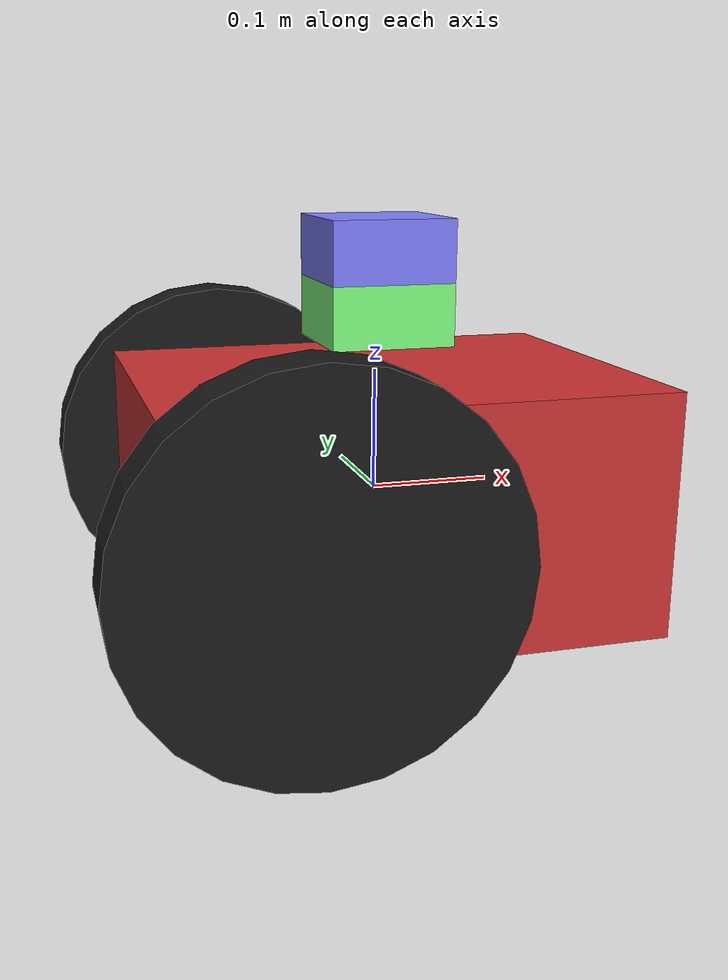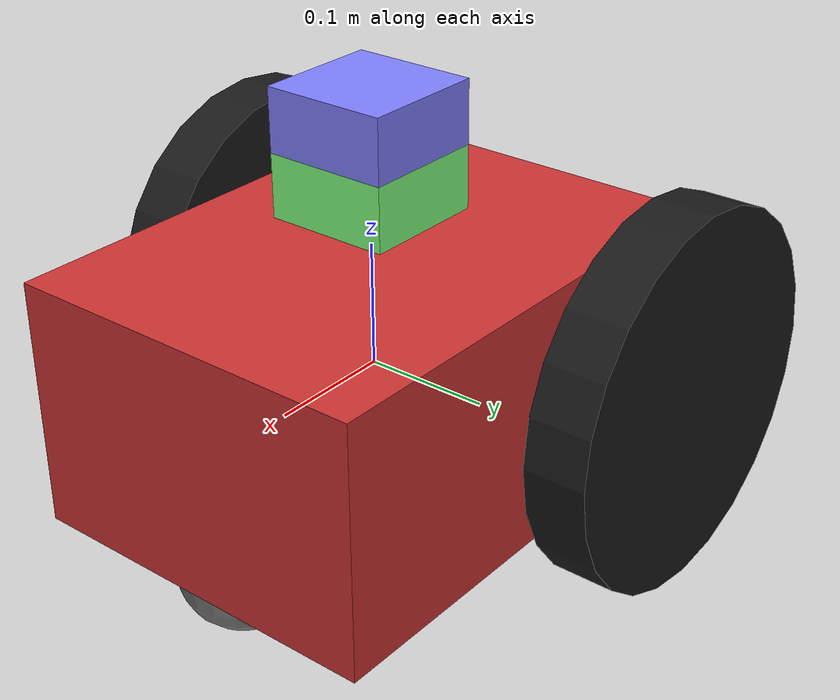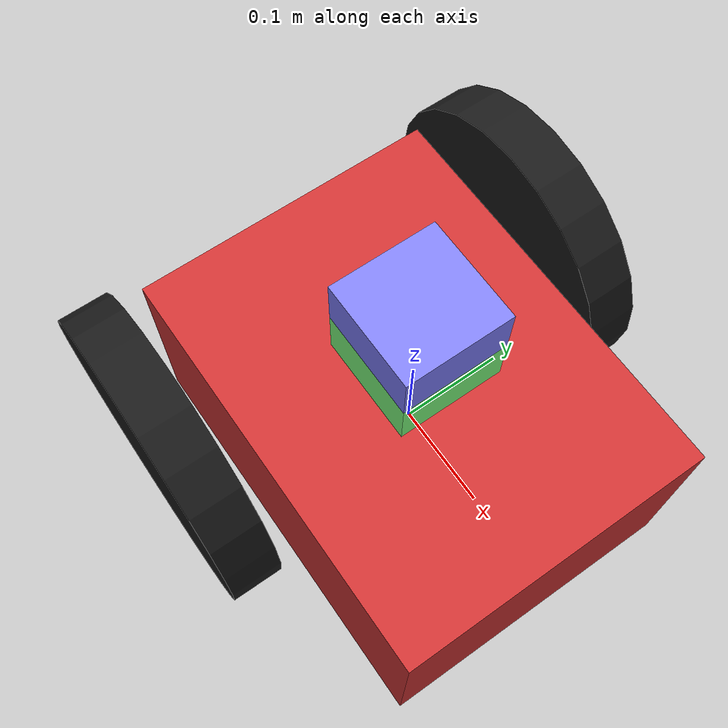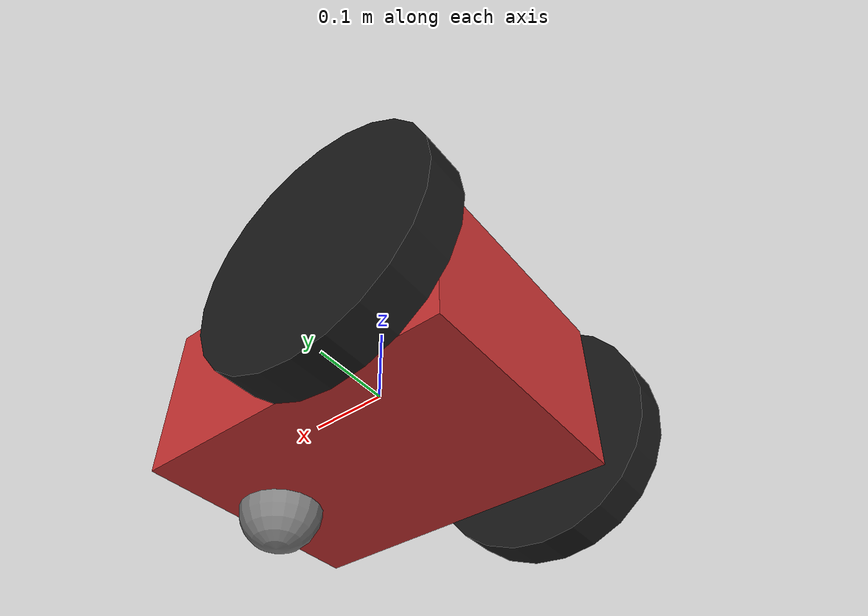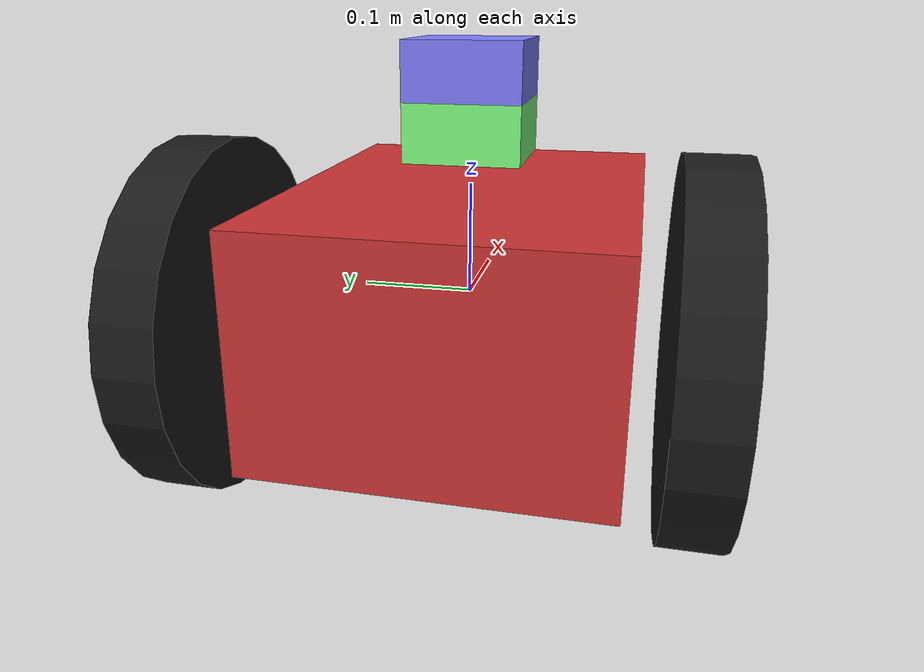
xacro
<?xml version="1.0"?>
<robot xmlns:xacro="http://www.ros.org/wiki/xacro" name="com01"
  xmlns:math="http://www.w3.org/2005/xpath-functions/math">
  <xacro:property name="M_PI" value="3.1415926535897931" />
  <!-- Parameters -->
  <xacro:property name="base_mass" value="5.0" />
  <xacro:property name="wheel_mass" value="0.5" />
  <xacro:property name="caster_mass" value="0.1" />

  <xacro:property name="base_size" value="0.4 0.3 0.2" />
  <xacro:property name="wheel_radius" value="0.15" />
  <xacro:property name="wheel_width" value="0.05" />
  <xacro:property name="caster_radius" value="0.05" />

  <xacro:property name="wheel_separation" value="0.4" />
  <xacro:property name="wheel_y_offset" value="0.2" />
  <xacro:property name="wheel_x_offset" value="-0.1" />
  <xacro:property name="caster_x_offset" value="0.15" />
  <xacro:property name="caster_z_offset" value="-0.1" />

  <!-- Base Link -->
  <link name="base_link">
    <inertial>
      <mass value="${base_mass}" />
      <inertia ixx="0.1" ixy="0.0" ixz="0.0" iyy="0.1" iyz="0.0" izz="0.1" />
    </inertial>

    <visual>
      <geometry>
        <box size="${base_size}" />
      </geometry>
      <material name="red">
        <color rgba="0.8 0.2 0.2 1" />
      </material>
    </visual>

    <collision>
      <geometry>
        <box size="${base_size}" />
      </geometry>
    </collision>
  </link>

  <!-- Left Wheel -->
  <xacro:macro name="wheel" params="prefix reflect">
    <link name="${prefix}_wheel">
      <inertial>
        <mass value="${wheel_mass}" />
        <inertia ixx="0.02" ixy="0.0" ixz="0.0" iyy="0.02" iyz="0.0" izz="0.02" />
      </inertial>

      <visual>
        <origin xyz="0 0 0" rpy="${M_PI/2} 0 0" />
        <geometry>
          <cylinder radius="${wheel_radius}" length="${wheel_width}" />
        </geometry>
        <material name="black">
          <color rgba="0.1 0.1 0.1 1" />
        </material>
      </visual>

      <collision>
        <origin xyz="0 0 0" rpy="${M_PI/2} 0 0" />
        <geometry>
          <cylinder radius="${wheel_radius}" length="${wheel_width}" />
        </geometry>
      </collision>
    </link>

    <joint name="${prefix}_wheel_joint" type="continuous">
      <parent link="base_link" />
      <child link="${prefix}_wheel" />
      <origin xyz="${wheel_x_offset} ${reflect * wheel_y_offset} 0" rpy="0 0 0" />
      <axis xyz="0 1 0" />
    </joint>

    <gazebo reference="${prefix}_wheel">
      <mu1 value="1.0" />
      <mu2 value="1.0" />
      <kp value="10000000.0" />
      <kd value="1.0" />
    </gazebo>
  </xacro:macro>

  <!-- Create left and right wheels -->
  <xacro:wheel prefix="left" reflect="1" />
  <xacro:wheel prefix="right" reflect="-1" />

  <!-- Caster Wheel -->
  <link name="caster_wheel">
    <inertial>
      <mass value="${caster_mass}" />
      <inertia ixx="0.001" ixy="0.0" ixz="0.0" iyy="0.001" iyz="0.0" izz="0.001" />
    </inertial>

    <visual>
      <geometry>
        <sphere radius="${caster_radius}" />
      </geometry>
      <material name="gray">
        <color rgba="0.5 0.5 0.5 1" />
      </material>
    </visual>

    <collision>
      <geometry>
        <sphere radius="${caster_radius}" />
      </geometry>
    </collision>
  </link>

  <joint name="caster_wheel_joint" type="fixed">
    <parent link="base_link" />
    <child link="caster_wheel" />
    <origin xyz="${caster_x_offset} 0 ${caster_z_offset}" rpy="0 0 0" />
  </joint>

  <!-- IMU Link -->
  <link name="imu_link">
    <inertial>
      <mass value="0.01" />
      <inertia ixx="0.001" ixy="0.0" ixz="0.0" iyy="0.001" iyz="0.0" izz="0.001" />
    </inertial>

    <visual>
      <geometry>
        <box size="0.1 0.1 0.05" />
      </geometry>
      <material name="blue">
        <color rgba="0.5 0.5 1 1" />
      </material>
    </visual>

    <collision>
      <geometry>
        <box size="0.1 0.1 0.05" />
      </geometry>
    </collision>
  </link>
  <joint name="imu_joint" type="fixed">
    <parent link="base_link" />
    <child link="imu_link" />
    <origin xyz="0 0 0.2" rpy="0 0 0" />
  </joint>
  <gazebo reference="imu_link">
    <sensor name="imu_sensor" type="imu">
      <always_on>1</always_on>
      <update_rate>10</update_rate>
      <visualize>true</visualize>
      <topic>imu</topic>
    </sensor>
  </gazebo>

  <!-- Lidar Link -->
  <link name="lidar_link">
    <inertial>
      <mass value="0.01" />
      <inertia ixx="0.001" ixy="0.0" ixz="0.0" iyy="0.001" iyz="0.0" izz="0.001" />
    </inertial>

    <visual>
      <geometry>
        <box size="0.1 0.1 0.05" />
      </geometry>
      <material name="green">
        <color rgba="0.5 1 0.5 1" />
      </material>
    </visual>

    <collision>
      <geometry>
        <box size="0.1 0.1 0.05" />
      </geometry>
    </collision>
  </link>
  <joint name="lidar_joint" type="fixed">
    <parent link="base_link" />
    <child link="lidar_link" />
    <origin xyz="0 0 0.15" rpy="0 0 0" />
  </joint>
  <gazebo reference="lidar_link">
    <sensor name='gpu_lidar' type='gpu_lidar'>
      <topic>scan</topic>
      <update_rate>20</update_rate>
      <gz_frame_id>lidar_link</gz_frame_id>
      <ray>
        <scan>
          <horizontal>
            <samples>640</samples>
            <resolution>1</resolution>
            <min_angle>-1.396263</min_angle>
            <max_angle>1.396263</max_angle>
          </horizontal>
          <vertical>
            <samples>1</samples>
            <resolution>0.01</resolution>
            <min_angle>0</min_angle>
            <max_angle>0</max_angle>
          </vertical>
        </scan>
        <range>
          <min>0.08</min>
          <max>10.0</max>
          <resolution>0.01</resolution>
        </range>
      </ray>
      <always_on>1</always_on>
      <visualize>true</visualize>
    </sensor>
  </gazebo>

  <!-- Gazebo Plugins -->
  <gazebo>
    <plugin filename="gz-sim-diff-drive-system" name="gz::sim::systems::DiffDrive">
      <left_joint>left_wheel_joint</left_joint>
      <right_joint>right_wheel_joint</right_joint>
      <wheel_separation>${wheel_separation}</wheel_separation>
      <wheel_radius>${wheel_radius}</wheel_radius>
      <topic>cmd_vel</topic>
      <odom_topic>odom</odom_topic>
      <frame_id>odom</frame_id>
      <child_frame_id>base_link</child_frame_id>
      <odom_publish_frequency>50</odom_publish_frequency>
      <publish_odom_tf>false</publish_odom_tf>
    </plugin>
  </gazebo>

  <gazebo>
    <plugin filename="gz-sim-joint-state-publisher-system" name="gz::sim::systems::JointStatePublisher">
    </plugin>
  </gazebo>

</robot>
